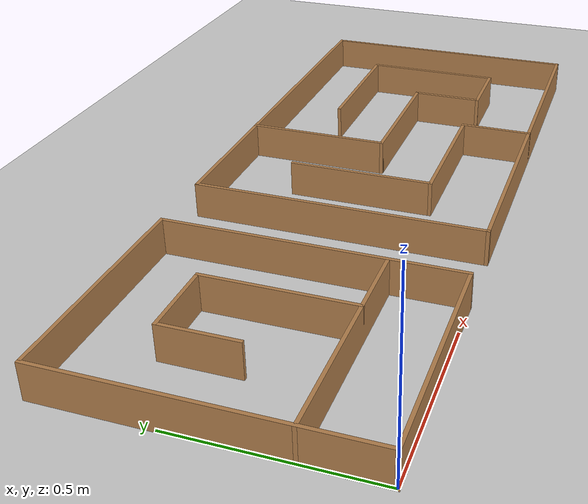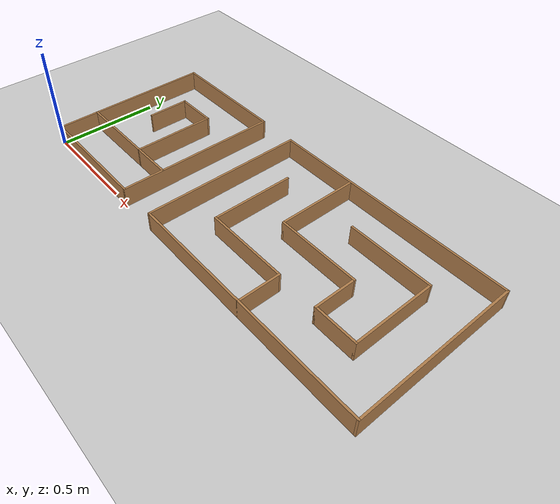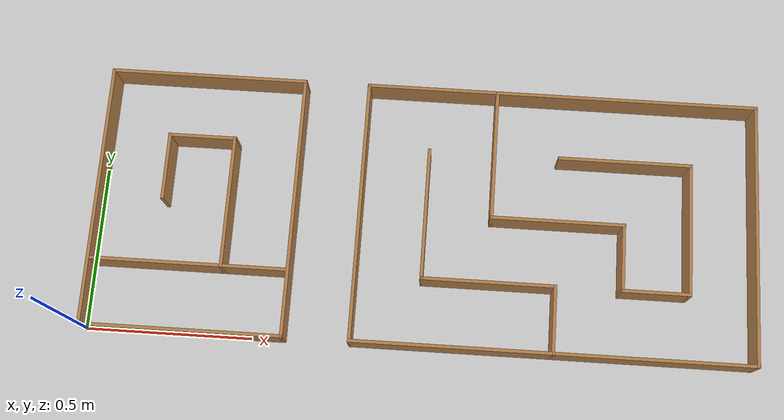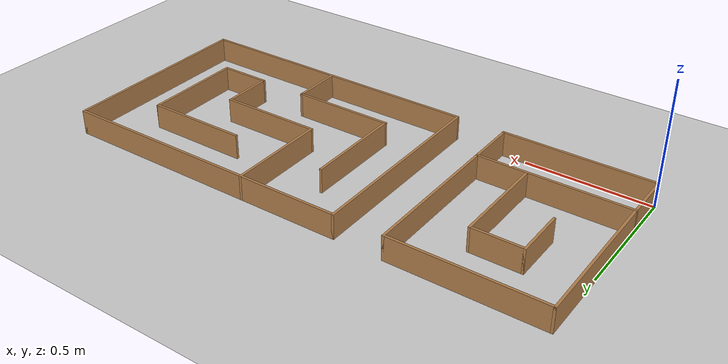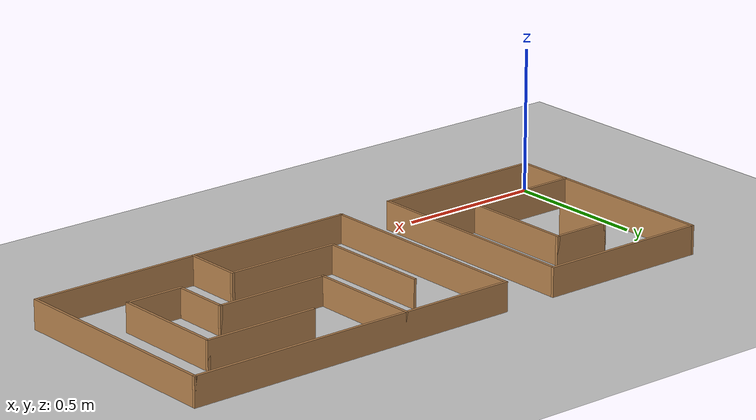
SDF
<sdf version="1.7">
 <world name="default">
  <light name="sun" type="directional">
   <cast_shadows>0</cast_shadows>
   <pose>0 0 10 0 -0 0</pose>
   <diffuse>0.8 0.8 0.8 1</diffuse>
   <specular>0.2 0.2 0.2 1</specular>
   <attenuation>
    <range>1000</range>
    <constant>0.9</constant>
    <linear>0.01</linear>
    <quadratic>0.001</quadratic>
   </attenuation>
   <direction>-0.5 0.1 -0.9</direction>
   <spot><inner_angle>0</inner_angle><outer_angle>0</outer_angle><falloff>0</falloff></spot>
  </light>
  <model name="ground_plane">
   <static>1</static>
   <link name="link">
    <collision name="collision">
     <geometry><plane><normal>0 0 1</normal><size>100 100</size></plane></geometry>
     <surface>
      <contact><collide_bitmask>65535</collide_bitmask></contact>
      <friction><ode><mu>100</mu><mu2>50</mu2></ode></friction>
     </surface>
    </collision>
    <visual name="visual">
     <cast_shadows>0</cast_shadows>
     <geometry><plane><normal>0 0 1</normal><size>100 100</size></plane></geometry>
     <material>
      <script><uri>file://media/materials/scripts/gazebo.material</uri><name>Gazebo/Grey</name></script>
     </material>
    </visual>
   </link>
  </model>
  <gravity>0 0 -9.8</gravity>
  <magnetic_field>6e-06 2.3e-05 -4.2e-05</magnetic_field>
  <atmosphere type="adiabatic"/>
  <physics type="ode">
   <max_step_size>0.001</max_step_size>
   <real_time_factor>1</real_time_factor>
   <real_time_update_rate>1000</real_time_update_rate>
  </physics>
  <scene><ambient>0.4 0.4 0.4 1</ambient><background>0.7 0.7 0.7 1</background><shadows>1</shadows></scene>
  <audio><device>default</device></audio>
  <spherical_coordinates>
   <surface_model>EARTH_WGS84</surface_model>
   <latitude_deg>0</latitude_deg>
   <longitude_deg>0</longitude_deg>
   <elevation>0</elevation>
   <heading_deg>0</heading_deg>
  </spherical_coordinates>
  <model name="two_parts_maze">
   <pose>1 0.4 0 0 -0 0</pose>
   <link name="Wall_0">
    <collision name="Wall_0_Collision">
     <geometry><box><size>0.61 0.01 0.1</size></box></geometry>
     <pose>0 0 0.05 0 -0 0</pose>
    </collision>
    <visual name="Wall_0_Visual">
     <pose>0 0 0.05 0 -0 0</pose>
     <geometry><box><size>0.61 0.01 0.1</size></box></geometry>
     <material>
      <script><uri>file://media/materials/scripts/gazebo.material</uri><name>Gazebo/Wood</name></script>
      <ambient>1 1 1 1</ambient>
     </material>
     <meta><layer>0</layer></meta>
    </visual>
    <pose>-0.7 -0.4 0 0 -0 0</pose>
   </link>
   <link name="Wall_10">
    <collision name="Wall_10_Collision">
     <geometry><box><size>0.41 0.01 0.1</size></box></geometry>
     <pose>0 0 0.05 0 -0 0</pose>
    </collision>
    <visual name="Wall_10_Visual">
     <pose>0 0 0.05 0 -0 0</pose>
     <geometry><box><size>0.41 0.01 0.1</size></box></geometry>
     <material>
      <script><uri>file://media/materials/scripts/gazebo.material</uri><name>Gazebo/Wood</name></script>
      <ambient>1 1 1 1</ambient>
     </material>
     <meta><layer>0</layer></meta>
    </visual>
    <pose>-0.6 0 0 0 -0 1.5708</pose>
   </link>
   <link name="Wall_12">
    <collision name="Wall_12_Collision">
     <geometry><box><size>0.21 0.01 0.1</size></box></geometry>
     <pose>0 0 0.05 0 -0 0</pose>
    </collision>
    <visual name="Wall_12_Visual">
     <pose>0 0 0.05 0 -0 0</pose>
     <geometry><box><size>0.21 0.01 0.1</size></box></geometry>
     <material>
      <script><uri>file://media/materials/scripts/gazebo.material</uri><name>Gazebo/Wood</name></script>
      <ambient>1 1 1 1</ambient>
     </material>
     <meta><layer>0</layer></meta>
    </visual>
    <pose>-0.7 0.2 0 0 -0 0</pose>
   </link>
   <link name="Wall_14">
    <collision name="Wall_14_Collision">
     <geometry><box><size>0.21 0.01 0.1</size></box></geometry>
     <pose>0 0 0.05 0 -0 0</pose>
    </collision>
    <visual name="Wall_14_Visual">
     <pose>0 0 0.05 0 -0 0</pose>
     <geometry><box><size>0.21 0.01 0.1</size></box></geometry>
     <material>
      <script><uri>file://media/materials/scripts/gazebo.material</uri><name>Gazebo/Wood</name></script>
      <ambient>1 1 1 1</ambient>
     </material>
     <meta><layer>0</layer></meta>
    </visual>
    <pose>-0.8 0.1 0 0 -0 1.5708</pose>
   </link>
   <link name="Wall_16">
    <collision name="Wall_16_Collision">
     <geometry><box><size>1.21 0.01 0.1</size></box></geometry>
     <pose>0 0 0.05 0 -0 0</pose>
    </collision>
    <visual name="Wall_16_Visual">
     <pose>0 0 0.05 0 -0 0</pose>
     <geometry><box><size>1.21 0.01 0.1</size></box></geometry>
     <material>
      <script><uri>file://media/materials/scripts/gazebo.material</uri><name>Gazebo/Wood</name></script>
      <ambient>1 1 1 1</ambient>
     </material>
     <meta><layer>0</layer></meta>
    </visual>
    <pose>0.4 -0.4 0 0 -0 0</pose>
   </link>
   <link name="Wall_18">
    <collision name="Wall_18_Collision">
     <geometry><box><size>0.81 0.01 0.1</size></box></geometry>
     <pose>0 0 0.05 0 -0 0</pose>
    </collision>
    <visual name="Wall_18_Visual">
     <pose>0 0 0.05 0 -0 0</pose>
     <geometry><box><size>0.81 0.01 0.1</size></box></geometry>
     <material>
      <script><uri>file://media/materials/scripts/gazebo.material</uri><name>Gazebo/Wood</name></script>
      <ambient>1 1 1 1</ambient>
     </material>
     <meta><layer>0</layer></meta>
    </visual>
    <pose>-0.2 0 0 0 -0 1.5708</pose>
   </link>
   <link name="Wall_2">
    <collision name="Wall_2_Collision">
     <geometry><box><size>0.81 0.01 0.1</size></box></geometry>
     <pose>0 0 0.05 0 -0 0</pose>
    </collision>
    <visual name="Wall_2_Visual">
     <pose>0 0 0.05 0 -0 0</pose>
     <geometry><box><size>0.81 0.01 0.1</size></box></geometry>
     <material>
      <script><uri>file://media/materials/scripts/gazebo.material</uri><name>Gazebo/Wood</name></script>
      <ambient>1 1 1 1</ambient>
     </material>
     <meta><layer>0</layer></meta>
    </visual>
    <pose>-1 0 0 0 -0 1.5708</pose>
   </link>
   <link name="Wall_20">
    <collision name="Wall_20_Collision">
     <geometry><box><size>1.21 0.01 0.1</size></box></geometry>
     <pose>0 0 0.05 0 -0 0</pose>
    </collision>
    <visual name="Wall_20_Visual">
     <pose>0 0 0.05 0 -0 0</pose>
     <geometry><box><size>1.21 0.01 0.1</size></box></geometry>
     <material>
      <script><uri>file://media/materials/scripts/gazebo.material</uri><name>Gazebo/Wood</name></script>
      <ambient>1 1 1 1</ambient>
     </material>
     <meta><layer>0</layer></meta>
    </visual>
    <pose>0.4 0.4 0 0 -0 0</pose>
   </link>
   <link name="Wall_22">
    <collision name="Wall_22_Collision">
     <geometry><box><size>0.81 0.01 0.1</size></box></geometry>
     <pose>0 0 0.05 0 -0 0</pose>
    </collision>
    <visual name="Wall_22_Visual">
     <pose>0 0 0.05 0 -0 0</pose>
     <geometry><box><size>0.81 0.01 0.1</size></box></geometry>
     <material>
      <script><uri>file://media/materials/scripts/gazebo.material</uri><name>Gazebo/Wood</name></script>
      <ambient>1 1 1 1</ambient>
     </material>
     <meta><layer>0</layer></meta>
    </visual>
    <pose>1 0 0 0 -0 1.5708</pose>
   </link>
   <link name="Wall_24">
    <collision name="Wall_24_Collision">
     <geometry><box><size>0.21 0.01 0.1</size></box></geometry>
     <pose>0 0 0.05 0 -0 0</pose>
    </collision>
    <visual name="Wall_24_Visual">
     <pose>0 0 0.05 0 -0 0</pose>
     <geometry><box><size>0.21 0.01 0.1</size></box></geometry>
     <material>
      <script><uri>file://media/materials/scripts/gazebo.material</uri><name>Gazebo/Wood</name></script>
      <ambient>1 1 1 1</ambient>
     </material>
     <meta><layer>0</layer></meta>
    </visual>
    <pose>0.4 -0.3 0 0 -0 1.5708</pose>
   </link>
   <link name="Wall_26">
    <collision name="Wall_26_Collision">
     <geometry><box><size>0.41 0.01 0.1</size></box></geometry>
     <pose>0 0 0.05 0 -0 0</pose>
    </collision>
    <visual name="Wall_26_Visual">
     <pose>0 0 0.05 0 -0 0</pose>
     <geometry><box><size>0.41 0.01 0.1</size></box></geometry>
     <material>
      <script><uri>file://media/materials/scripts/gazebo.material</uri><name>Gazebo/Wood</name></script>
      <ambient>1 1 1 1</ambient>
     </material>
     <meta><layer>0</layer></meta>
    </visual>
    <pose>0.2 -0.2 0 0 -0 0</pose>
   </link>
   <link name="Wall_28">
    <collision name="Wall_28_Collision">
     <geometry><box><size>0.41 0.01 0.1</size></box></geometry>
     <pose>0 0 0.05 0 -0 0</pose>
    </collision>
    <visual name="Wall_28_Visual">
     <pose>0 0 0.05 0 -0 0</pose>
     <geometry><box><size>0.41 0.01 0.1</size></box></geometry>
     <material>
      <script><uri>file://media/materials/scripts/gazebo.material</uri><name>Gazebo/Wood</name></script>
      <ambient>1 1 1 1</ambient>
     </material>
     <meta><layer>0</layer></meta>
    </visual>
    <pose>-0 0 0 0 -0 1.5708</pose>
   </link>
   <link name="Wall_30">
    <collision name="Wall_30_Collision">
     <geometry><box><size>0.41 0.01 0.1</size></box></geometry>
     <pose>0 0 0.05 0 -0 0</pose>
    </collision>
    <visual name="Wall_30_Visual">
     <pose>0 0 0.05 0 -0 0</pose>
     <geometry><box><size>0.41 0.01 0.1</size></box></geometry>
     <material>
      <script><uri>file://media/materials/scripts/gazebo.material</uri><name>Gazebo/Wood</name></script>
      <ambient>1 1 1 1</ambient>
     </material>
     <meta><layer>0</layer></meta>
    </visual>
    <pose>0.2 0.2 0 0 -0 1.5708</pose>
   </link>
   <link name="Wall_32">
    <collision name="Wall_32_Collision">
     <geometry><box><size>0.41 0.01 0.1</size></box></geometry>
     <pose>0 0 0.05 0 -0 0</pose>
    </collision>
    <visual name="Wall_32_Visual">
     <pose>0 0 0.05 0 -0 0</pose>
     <geometry><box><size>0.41 0.01 0.1</size></box></geometry>
     <material>
      <script><uri>file://media/materials/scripts/gazebo.material</uri><name>Gazebo/Wood</name></script>
      <ambient>1 1 1 1</ambient>
     </material>
     <meta><layer>0</layer></meta>
    </visual>
    <pose>0.4 0 0 0 -0 0</pose>
   </link>
   <link name="Wall_34">
    <collision name="Wall_34_Collision">
     <geometry><box><size>0.21 0.01 0.1</size></box></geometry>
     <pose>0 0 0.05 0 -0 0</pose>
    </collision>
    <visual name="Wall_34_Visual">
     <pose>0 0 0.05 0 -0 0</pose>
     <geometry><box><size>0.21 0.01 0.1</size></box></geometry>
     <material>
      <script><uri>file://media/materials/scripts/gazebo.material</uri><name>Gazebo/Wood</name></script>
      <ambient>1 1 1 1</ambient>
     </material>
     <meta><layer>0</layer></meta>
    </visual>
    <pose>0.6 -0.1 0 0 -0 1.5708</pose>
   </link>
   <link name="Wall_36">
    <collision name="Wall_36_Collision">
     <geometry><box><size>0.21 0.01 0.1</size></box></geometry>
     <pose>0 0 0.05 0 -0 0</pose>
    </collision>
    <visual name="Wall_36_Visual">
     <pose>0 0 0.05 0 -0 0</pose>
     <geometry><box><size>0.21 0.01 0.1</size></box></geometry>
     <material>
      <script><uri>file://media/materials/scripts/gazebo.material</uri><name>Gazebo/Wood</name></script>
      <ambient>1 1 1 1</ambient>
     </material>
     <meta><layer>0</layer></meta>
    </visual>
    <pose>0.7 -0.2 0 0 -0 0</pose>
   </link>
   <link name="Wall_38">
    <collision name="Wall_38_Collision">
     <geometry><box><size>0.41 0.01 0.1</size></box></geometry>
     <pose>0 0 0.05 0 -0 0</pose>
    </collision>
    <visual name="Wall_38_Visual">
     <pose>0 0 0.05 0 -0 0</pose>
     <geometry><box><size>0.41 0.01 0.1</size></box></geometry>
     <material>
      <script><uri>file://media/materials/scripts/gazebo.material</uri><name>Gazebo/Wood</name></script>
      <ambient>1 1 1 1</ambient>
     </material>
     <meta><layer>0</layer></meta>
    </visual>
    <pose>0.8 0 0 0 -0 1.5708</pose>
   </link>
   <link name="Wall_4">
    <collision name="Wall_4_Collision">
     <geometry><box><size>0.81 0.01 0.1</size></box></geometry>
     <pose>0 0 0.05 0 -0 0</pose>
    </collision>
    <visual name="Wall_4_Visual">
     <pose>0 0 0.05 0 -0 0</pose>
     <geometry><box><size>0.81 0.01 0.1</size></box></geometry>
     <material>
      <script><uri>file://media/materials/scripts/gazebo.material</uri><name>Gazebo/Wood</name></script>
      <ambient>1 1 1 1</ambient>
     </material>
     <meta><layer>0</layer></meta>
    </visual>
    <pose>-0.4 0 0 0 -0 1.5708</pose>
   </link>
   <link name="Wall_40">
    <collision name="Wall_40_Collision">
     <geometry><box><size>0.41 0.01 0.1</size></box></geometry>
     <pose>0 0 0.05 0 -0 0</pose>
    </collision>
    <visual name="Wall_40_Visual">
     <pose>0 0 0.05 0 -0 0</pose>
     <geometry><box><size>0.41 0.01 0.1</size></box></geometry>
     <material>
      <script><uri>file://media/materials/scripts/gazebo.material</uri><name>Gazebo/Wood</name></script>
      <ambient>1 1 1 1</ambient>
     </material>
     <meta><layer>0</layer></meta>
    </visual>
    <pose>0.6 0.2 0 0 -0 0</pose>
   </link>
   <link name="Wall_6">
    <collision name="Wall_6_Collision">
     <geometry><box><size>0.61 0.01 0.1</size></box></geometry>
     <pose>0 0 0.05 0 -0 0</pose>
    </collision>
    <visual name="Wall_6_Visual">
     <pose>0 0 0.05 0 -0 0</pose>
     <geometry><box><size>0.61 0.01 0.1</size></box></geometry>
     <material>
      <script><uri>file://media/materials/scripts/gazebo.material</uri><name>Gazebo/Wood</name></script>
      <ambient>1 1 1 1</ambient>
     </material>
     <meta><layer>0</layer></meta>
    </visual>
    <pose>-0.7 0.4 0 0 -0 0</pose>
   </link>
   <link name="Wall_8">
    <collision name="Wall_8_Collision">
     <geometry><box><size>0.61 0.01 0.1</size></box></geometry>
     <pose>0.1 0 0.05 0 -0 0</pose>
    </collision>
    <visual name="Wall_8_Visual">
     <pose>0.1 0 0.05 0 -0 0</pose>
     <geometry><box><size>0.61 0.01 0.1</size></box></geometry>
     <material>
      <script><uri>file://media/materials/scripts/gazebo.material</uri><name>Gazebo/Wood</name></script>
      <ambient>1 1 1 1</ambient>
     </material>
     <meta><layer>0</layer></meta>
    </visual>
    <pose>-0.8 -0.2 0 0 -0 0</pose>
   </link>
   <static>1</static>
  </model>
 </world>
</sdf>
